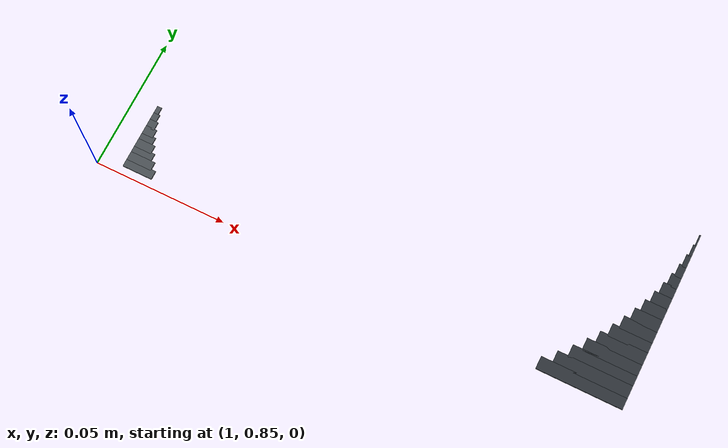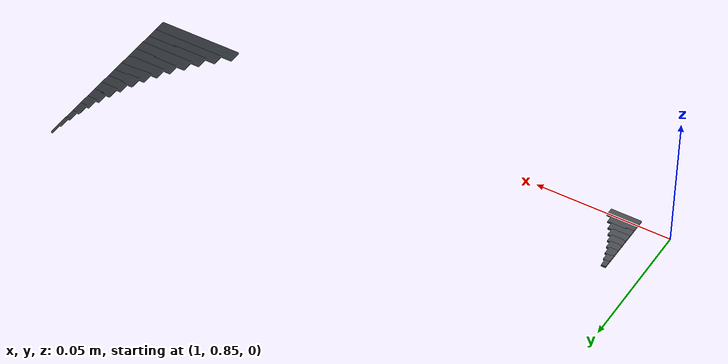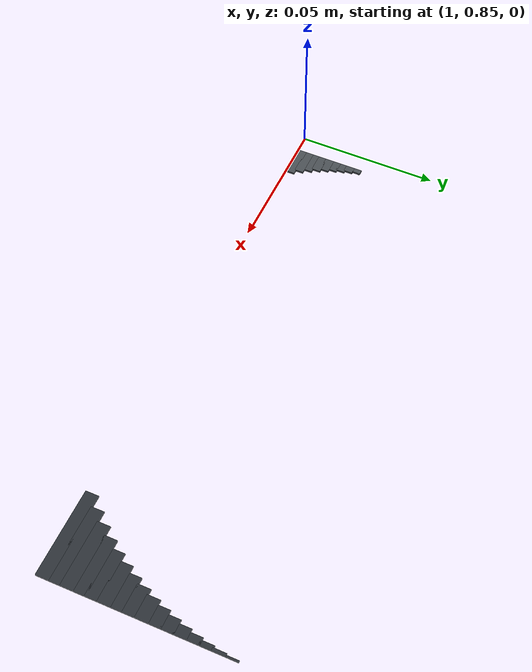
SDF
<sdf version="1.6">
 <world name="sandbox">
  <include><uri>model://sun</uri></include>
  <model name="outer_junction_1.2_0.825_06">
   <static>true</static>
   <pose>1.184217 0.852083 0.004350 0.000000 0.000000 0.000000</pose>
   <link name="body">
    <visual name="visual">
     <geometry><box><size>0.031566 0.004667 0.000700</size></box></geometry>
     <material><ambient>0.16 0.18 0.20 1</ambient><diffuse>0.16 0.18 0.20 1</diffuse></material>
    </visual>
   </link>
  </model>
  <model name="outer_junction_1.2_0.825_07">
   <static>true</static>
   <pose>1.186309 0.856250 0.004350 0.000000 0.000000 0.000000</pose>
   <link name="body">
    <visual name="visual">
     <geometry><box><size>0.027382 0.004667 0.000700</size></box></geometry>
     <material><ambient>0.16 0.18 0.20 1</ambient><diffuse>0.16 0.18 0.20 1</diffuse></material>
    </visual>
   </link>
  </model>
  <model name="outer_junction_1.2_0.825_08">
   <static>true</static>
   <pose>1.188174 0.860417 0.004350 0.000000 0.000000 0.000000</pose>
   <link name="body">
    <visual name="visual">
     <geometry><box><size>0.023652 0.004667 0.000700</size></box></geometry>
     <material><ambient>0.16 0.18 0.20 1</ambient><diffuse>0.16 0.18 0.20 1</diffuse></material>
    </visual>
   </link>
  </model>
  <model name="outer_junction_1.2_0.825_09">
   <static>true</static>
   <pose>1.189843 0.864583 0.004350 0.000000 0.000000 0.000000</pose>
   <link name="body">
    <visual name="visual">
     <geometry><box><size>0.020314 0.004667 0.000700</size></box></geometry>
     <material><ambient>0.16 0.18 0.20 1</ambient><diffuse>0.16 0.18 0.20 1</diffuse></material>
    </visual>
   </link>
  </model>
  <model name="outer_junction_1.2_0.825_10">
   <static>true</static>
   <pose>1.191340 0.868750 0.004350 0.000000 0.000000 0.000000</pose>
   <link name="body">
    <visual name="visual">
     <geometry><box><size>0.017320 0.004667 0.000700</size></box></geometry>
     <material><ambient>0.16 0.18 0.20 1</ambient><diffuse>0.16 0.18 0.20 1</diffuse></material>
    </visual>
   </link>
  </model>
  <model name="outer_junction_1.2_0.825_11">
   <static>true</static>
   <pose>1.192683 0.872917 0.004350 0.000000 0.000000 0.000000</pose>
   <link name="body">
    <visual name="visual">
     <geometry><box><size>0.014634 0.004667 0.000700</size></box></geometry>
     <material><ambient>0.16 0.18 0.20 1</ambient><diffuse>0.16 0.18 0.20 1</diffuse></material>
    </visual>
   </link>
  </model>
  <model name="outer_junction_1.2_0.825_12">
   <static>true</static>
   <pose>1.193886 0.877083 0.004350 0.000000 0.000000 0.000000</pose>
   <link name="body">
    <visual name="visual">
     <geometry><box><size>0.012228 0.004667 0.000700</size></box></geometry>
     <material><ambient>0.16 0.18 0.20 1</ambient><diffuse>0.16 0.18 0.20 1</diffuse></material>
    </visual>
   </link>
  </model>
  <model name="outer_junction_1.2_0.825_13">
   <static>true</static>
   <pose>1.194961 0.881250 0.004350 0.000000 0.000000 0.000000</pose>
   <link name="body">
    <visual name="visual">
     <geometry><box><size>0.010078 0.004667 0.000700</size></box></geometry>
     <material><ambient>0.16 0.18 0.20 1</ambient><diffuse>0.16 0.18 0.20 1</diffuse></material>
    </visual>
   </link>
  </model>
  <model name="outer_junction_1.2_0.825_14">
   <static>true</static>
   <pose>1.195916 0.885417 0.004350 0.000000 0.000000 0.000000</pose>
   <link name="body">
    <visual name="visual">
     <geometry><box><size>0.008168 0.004667 0.000700</size></box></geometry>
     <material><ambient>0.16 0.18 0.20 1</ambient><diffuse>0.16 0.18 0.20 1</diffuse></material>
    </visual>
   </link>
  </model>
  <model name="outer_junction_1.2_0.825_15">
   <static>true</static>
   <pose>1.196759 0.889583 0.004350 0.000000 0.000000 0.000000</pose>
   <link name="body">
    <visual name="visual">
     <geometry><box><size>0.006482 0.004667 0.000700</size></box></geometry>
     <material><ambient>0.16 0.18 0.20 1</ambient><diffuse>0.16 0.18 0.20 1</diffuse></material>
    </visual>
   </link>
  </model>
  <model name="outer_junction_1.2_0.825_16">
   <static>true</static>
   <pose>1.197496 0.893750 0.004350 0.000000 0.000000 0.000000</pose>
   <link name="body">
    <visual name="visual">
     <geometry><box><size>0.005008 0.004667 0.000700</size></box></geometry>
     <material><ambient>0.16 0.18 0.20 1</ambient><diffuse>0.16 0.18 0.20 1</diffuse></material>
    </visual>
   </link>
  </model>
  <model name="outer_junction_1.2_0.825_17">
   <static>true</static>
   <pose>1.198131 0.897917 0.004350 0.000000 0.000000 0.000000</pose>
   <link name="body">
    <visual name="visual">
     <geometry><box><size>0.003737 0.004667 0.000700</size></box></geometry>
     <material><ambient>0.16 0.18 0.20 1</ambient><diffuse>0.16 0.18 0.20 1</diffuse></material>
    </visual>
   </link>
  </model>
  <model name="outer_junction_1.2_0.825_18">
   <static>true</static>
   <pose>1.198669 0.902083 0.004350 0.000000 0.000000 0.000000</pose>
   <link name="body">
    <visual name="visual">
     <geometry><box><size>0.002661 0.004667 0.000700</size></box></geometry>
     <material><ambient>0.16 0.18 0.20 1</ambient><diffuse>0.16 0.18 0.20 1</diffuse></material>
    </visual>
   </link>
  </model>
  <model name="outer_junction_1.2_0.825_19">
   <static>true</static>
   <pose>1.199113 0.906250 0.004350 0.000000 0.000000 0.000000</pose>
   <link name="body">
    <visual name="visual">
     <geometry><box><size>0.001774 0.004667 0.000700</size></box></geometry>
     <material><ambient>0.16 0.18 0.20 1</ambient><diffuse>0.16 0.18 0.20 1</diffuse></material>
    </visual>
   </link>
  </model>
  <model name="outer_junction_1.2_0.825_20">
   <static>true</static>
   <pose>1.199465 0.910417 0.004350 0.000000 0.000000 0.000000</pose>
   <link name="body">
    <visual name="visual">
     <geometry><box><size>0.001069 0.004667 0.000700</size></box></geometry>
     <material><ambient>0.16 0.18 0.20 1</ambient><diffuse>0.16 0.18 0.20 1</diffuse></material>
    </visual>
   </link>
  </model>
  <model name="outer_junction_1.2_0.825_21">
   <static>true</static>
   <pose>1.199728 0.914583 0.004350 0.000000 0.000000 0.000000</pose>
   <link name="body">
    <visual name="visual">
     <geometry><box><size>0.000544 0.004667 0.000700</size></box></geometry>
     <material><ambient>0.16 0.18 0.20 1</ambient><diffuse>0.16 0.18 0.20 1</diffuse></material>
    </visual>
   </link>
  </model>
  <model name="parking_B_entry_mouth_1_10">
   <static>true</static>
   <pose>1.015629 0.853437 0.004350 0.000000 0.000000 0.000000</pose>
   <link name="body">
    <visual name="visual">
     <geometry><box><size>0.011258 0.003208 0.000700</size></box></geometry>
     <material><ambient>0.27 0.29 0.31 1</ambient><diffuse>0.27 0.29 0.31 1</diffuse></material>
    </visual>
   </link>
  </model>
  <model name="parking_B_entry_mouth_1_11">
   <static>true</static>
   <pose>1.014756 0.856146 0.004350 0.000000 0.000000 0.000000</pose>
   <link name="body">
    <visual name="visual">
     <geometry><box><size>0.009512 0.003208 0.000700</size></box></geometry>
     <material><ambient>0.27 0.29 0.31 1</ambient><diffuse>0.27 0.29 0.31 1</diffuse></material>
    </visual>
   </link>
  </model>
  <model name="parking_B_entry_mouth_1_12">
   <static>true</static>
   <pose>1.013974 0.858854 0.004350 0.000000 0.000000 0.000000</pose>
   <link name="body">
    <visual name="visual">
     <geometry><box><size>0.007948 0.003208 0.000700</size></box></geometry>
     <material><ambient>0.27 0.29 0.31 1</ambient><diffuse>0.27 0.29 0.31 1</diffuse></material>
    </visual>
   </link>
  </model>
  <model name="parking_B_entry_mouth_1_13">
   <static>true</static>
   <pose>1.013275 0.861563 0.004350 0.000000 0.000000 0.000000</pose>
   <link name="body">
    <visual name="visual">
     <geometry><box><size>0.006551 0.003208 0.000700</size></box></geometry>
     <material><ambient>0.27 0.29 0.31 1</ambient><diffuse>0.27 0.29 0.31 1</diffuse></material>
    </visual>
   </link>
  </model>
  <model name="parking_B_entry_mouth_1_14">
   <static>true</static>
   <pose>1.012655 0.864271 0.004350 0.000000 0.000000 0.000000</pose>
   <link name="body">
    <visual name="visual">
     <geometry><box><size>0.005309 0.003208 0.000700</size></box></geometry>
     <material><ambient>0.27 0.29 0.31 1</ambient><diffuse>0.27 0.29 0.31 1</diffuse></material>
    </visual>
   </link>
  </model>
  <model name="parking_B_entry_mouth_1_15">
   <static>true</static>
   <pose>1.012107 0.866979 0.004350 0.000000 0.000000 0.000000</pose>
   <link name="body">
    <visual name="visual">
     <geometry><box><size>0.004213 0.003208 0.000700</size></box></geometry>
     <material><ambient>0.27 0.29 0.31 1</ambient><diffuse>0.27 0.29 0.31 1</diffuse></material>
    </visual>
   </link>
  </model>
  <model name="parking_B_entry_mouth_1_16">
   <static>true</static>
   <pose>1.011628 0.869687 0.004350 0.000000 0.000000 0.000000</pose>
   <link name="body">
    <visual name="visual">
     <geometry><box><size>0.003255 0.003208 0.000700</size></box></geometry>
     <material><ambient>0.27 0.29 0.31 1</ambient><diffuse>0.27 0.29 0.31 1</diffuse></material>
    </visual>
   </link>
  </model>
  <model name="parking_B_entry_mouth_1_17">
   <static>true</static>
   <pose>1.011215 0.872396 0.004350 0.000000 0.000000 0.000000</pose>
   <link name="body">
    <visual name="visual">
     <geometry><box><size>0.002429 0.003208 0.000700</size></box></geometry>
     <material><ambient>0.27 0.29 0.31 1</ambient><diffuse>0.27 0.29 0.31 1</diffuse></material>
    </visual>
   </link>
  </model>
  <model name="parking_B_entry_mouth_1_18">
   <static>true</static>
   <pose>1.010865 0.875104 0.004350 0.000000 0.000000 0.000000</pose>
   <link name="body">
    <visual name="visual">
     <geometry><box><size>0.001730 0.003208 0.000700</size></box></geometry>
     <material><ambient>0.27 0.29 0.31 1</ambient><diffuse>0.27 0.29 0.31 1</diffuse></material>
    </visual>
   </link>
  </model>
 </world>
</sdf>
